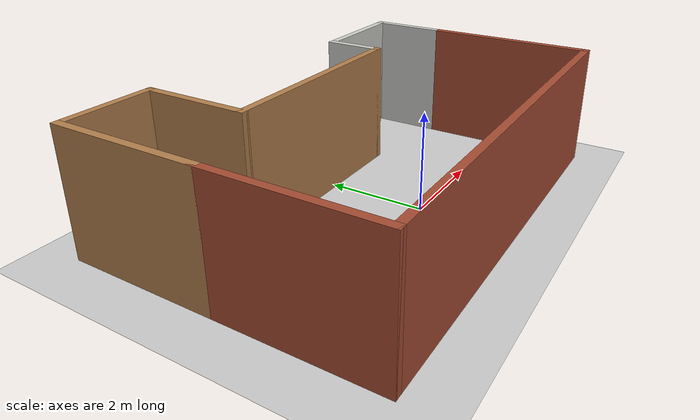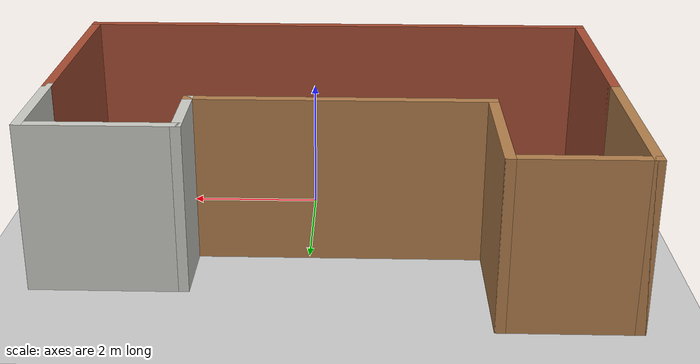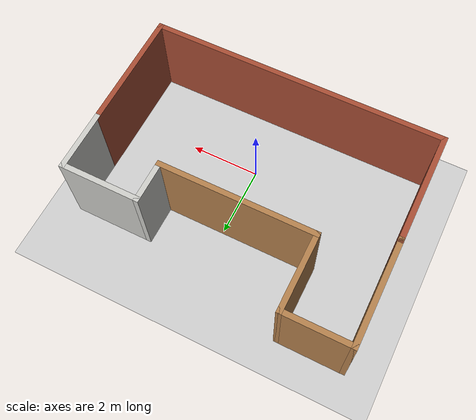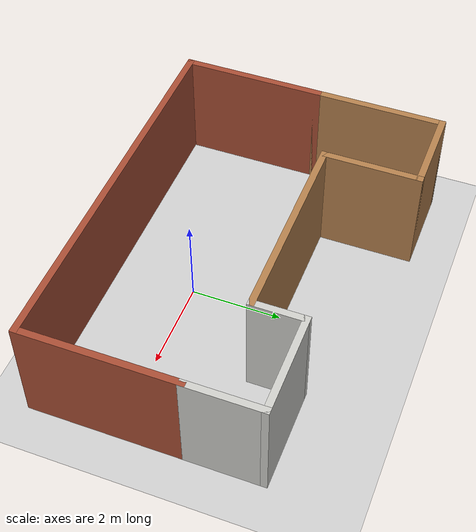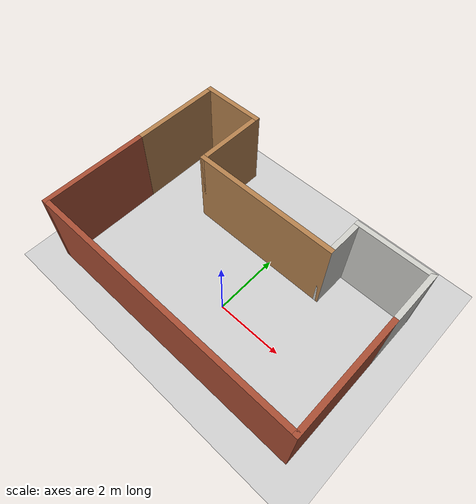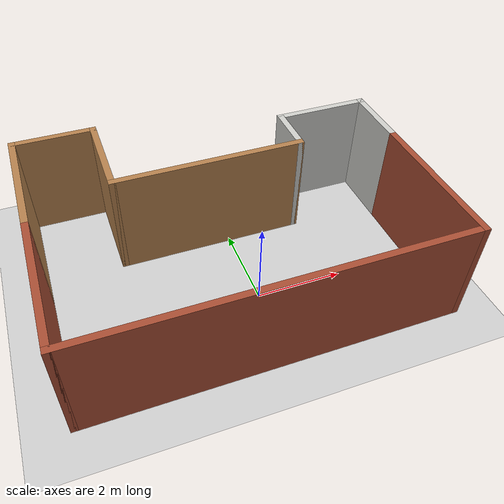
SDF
<sdf version="1.6">
 <world name="default">
  <light name="sun" type="directional">
   <pose>0 0 10 0 -0 0</pose>
   <diffuse>0.8 0.8 0.8 1</diffuse>
   <specular>0.2 0.2 0.2 1</specular>
   <attenuation>
    <range>1000</range>
    <constant>0.9</constant>
    <linear>0.01</linear>
    <quadratic>0.001</quadratic>
   </attenuation>
   <direction>-0.5 0.1 -0.9</direction>
  </light>
  <model name="ground_plane">
   <static>1</static>
   <link name="link">
    <collision name="collision">
     <geometry><plane><normal>0 0 1</normal><size>100 100</size></plane></geometry>
     <surface>
      <contact><collide_bitmask>65535</collide_bitmask></contact>
      <friction><ode><mu>100</mu><mu2>50</mu2></ode></friction>
     </surface>
    </collision>
    <visual name="visual">
     <cast_shadows>0</cast_shadows>
     <geometry><plane><normal>0 0 1</normal><size>100 100</size></plane></geometry>
     <material>
      <script><uri>file://media/materials/scripts/gazebo.material</uri><name>Gazebo/Grey</name></script>
     </material>
    </visual>
   </link>
  </model>
  <gravity>0 0 -9.8</gravity>
  <magnetic_field>6e-06 2.3e-05 -4.2e-05</magnetic_field>
  <atmosphere type="adiabatic"/>
  <physics name="default_physics" default="0" type="ode">
   <max_step_size>0.001</max_step_size>
   <real_time_factor>1</real_time_factor>
   <real_time_update_rate>1000</real_time_update_rate>
  </physics>
  <scene><ambient>0.4 0.4 0.4 1</ambient><background>0.7 0.7 0.7 1</background><shadows>1</shadows></scene>
  <spherical_coordinates>
   <surface_model>EARTH_WGS84</surface_model>
   <latitude_deg>0</latitude_deg>
   <longitude_deg>0</longitude_deg>
   <elevation>0</elevation>
   <heading_deg>0</heading_deg>
  </spherical_coordinates>
  <model name="Untitled">
   <pose>-0.295804 1.13226 0 0 -0 0</pose>
   <link name="Wall_28">
    <collision name="Wall_28_Collision">
     <geometry><box><size>3.25 0.15 2.5</size></box></geometry>
     <pose>0 0 1.25 0 -0 0</pose>
    </collision>
    <visual name="Wall_28_Visual">
     <pose>0 0 1.25 0 -0 0</pose>
     <geometry><box><size>3.25 0.15 2.5</size></box></geometry>
     <material>
      <script><uri>file://media/materials/scripts/gazebo.material</uri><name>Gazebo/Bricks</name></script>
      <ambient>1 1 1 1</ambient>
     </material>
     <meta><layer>0</layer></meta>
    </visual>
    <pose>-4.175 -1.425 0 0 0 -1.5708</pose>
   </link>
   <link name="Wall_29">
    <collision name="Wall_29_Collision">
     <geometry><box><size>8.5 0.15 2.5</size></box></geometry>
     <pose>0 0 1.25 0 -0 0</pose>
    </collision>
    <visual name="Wall_29_Visual">
     <pose>0 0 1.25 0 -0 0</pose>
     <geometry><box><size>8.5 0.15 2.5</size></box></geometry>
     <material>
      <script><uri>file://media/materials/scripts/gazebo.material</uri><name>Gazebo/Bricks</name></script>
      <ambient>1 1 1 1</ambient>
     </material>
     <meta><layer>0</layer></meta>
    </visual>
    <pose>0 -2.975 0 0 -0 0</pose>
   </link>
   <link name="Wall_30">
    <collision name="Wall_30_Collision">
     <geometry><box><size>3.5 0.15 2.5</size></box></geometry>
     <pose>0 0 1.25 0 -0 0</pose>
    </collision>
    <visual name="Wall_30_Visual">
     <pose>0 0 1.25 0 -0 0</pose>
     <geometry><box><size>3.5 0.15 2.5</size></box></geometry>
     <material>
      <script><uri>file://media/materials/scripts/gazebo.material</uri><name>Gazebo/Bricks</name></script>
      <ambient>1 1 1 1</ambient>
     </material>
     <meta><layer>0</layer></meta>
    </visual>
    <pose>4.175 -1.3 0 0 -0 1.5708</pose>
   </link>
   <link name="Wall_32">
    <collision name="Wall_32_Collision">
     <geometry><box><size>3 0.15 2.5</size></box></geometry>
     <pose>0 0 1.25 0 -0 0</pose>
    </collision>
    <visual name="Wall_32_Visual">
     <pose>0 0 1.25 0 -0 0</pose>
     <geometry><box><size>3 0.15 2.5</size></box></geometry>
     <material>
      <script><uri>file://media/materials/scripts/gazebo.material</uri><name>Gazebo/Wood</name></script>
      <ambient>1 1 1 1</ambient>
     </material>
     <meta><layer>0</layer></meta>
    </visual>
    <pose>-4.175 1.55 0 0 -0 1.5708</pose>
   </link>
   <link name="Wall_33">
    <collision name="Wall_33_Collision">
     <geometry><box><size>2 0.15 2.5</size></box></geometry>
     <pose>0 0 1.25 0 -0 0</pose>
    </collision>
    <visual name="Wall_33_Visual">
     <pose>0 0 1.25 0 -0 0</pose>
     <geometry><box><size>2 0.15 2.5</size></box></geometry>
     <material>
      <script><uri>file://media/materials/scripts/gazebo.material</uri><name>Gazebo/Wood</name></script>
      <ambient>1 1 1 1</ambient>
     </material>
     <meta><layer>0</layer></meta>
    </visual>
    <pose>-3.25 2.975 0 0 -0 0</pose>
   </link>
   <link name="Wall_34">
    <collision name="Wall_34_Collision">
     <geometry><box><size>2.25 0.15 2.5</size></box></geometry>
     <pose>0 0 1.25 0 -0 0</pose>
    </collision>
    <visual name="Wall_34_Visual">
     <pose>0 0 1.25 0 -0 0</pose>
     <geometry><box><size>2.25 0.15 2.5</size></box></geometry>
     <material>
      <script><uri>file://media/materials/scripts/gazebo.material</uri><name>Gazebo/Wood</name></script>
      <ambient>1 1 1 1</ambient>
     </material>
     <meta><layer>0</layer></meta>
    </visual>
    <pose>-2.325 1.925 0 0 0 -1.5708</pose>
   </link>
   <link name="Wall_35">
    <collision name="Wall_35_Collision">
     <geometry><box><size>4.5 0.15 2.5</size></box></geometry>
     <pose>0 0 1.25 0 -0 0</pose>
    </collision>
    <visual name="Wall_35_Visual">
     <pose>0 0 1.25 0 -0 0</pose>
     <geometry><box><size>4.5 0.15 2.5</size></box></geometry>
     <material>
      <script><uri>file://media/materials/scripts/gazebo.material</uri><name>Gazebo/Wood</name></script>
      <ambient>1 1 1 1</ambient>
     </material>
     <meta><layer>0</layer></meta>
    </visual>
    <pose>-0.15 0.875 0 0 -0 0</pose>
   </link>
   <link name="Wall_36">
    <collision name="Wall_36_Collision">
     <geometry><box><size>1.25 0.15 2.5</size></box></geometry>
     <pose>0 0 1.25 0 -0 0</pose>
    </collision>
    <visual name="Wall_36_Visual">
     <pose>0 0 1.25 0 -0 0</pose>
     <geometry><box><size>1.25 0.15 2.5</size></box></geometry>
     <material>
      <script><uri>file://media/materials/scripts/gazebo.material</uri><name>Gazebo/CeilingTiled</name></script>
      <ambient>1 1 1 1</ambient>
     </material>
     <meta><layer>0</layer></meta>
    </visual>
    <pose>2.025 1.425 0 0 -0 1.5708</pose>
   </link>
   <link name="Wall_40">
    <collision name="Wall_40_Collision">
     <geometry><box><size>1.75 0.15 2.5</size></box></geometry>
     <pose>0 0 1.25 0 -0 0</pose>
    </collision>
    <visual name="Wall_40_Visual">
     <pose>0 0 1.25 0 -0 0</pose>
     <geometry><box><size>1.75 0.15 2.5</size></box></geometry>
     <material>
      <script><uri>file://media/materials/scripts/gazebo.material</uri><name>Gazebo/CeilingTiled</name></script>
      <ambient>1 1 1 1</ambient>
     </material>
     <meta><layer>0</layer></meta>
    </visual>
    <pose>4.175 1.175 0 0 -0 1.5708</pose>
   </link>
   <link name="Wall_41">
    <collision name="Wall_41_Collision">
     <geometry><box><size>2.3 0.15 2.5</size></box></geometry>
     <pose>0 0 1.25 0 -0 0</pose>
    </collision>
    <visual name="Wall_41_Visual">
     <pose>0 0 1.25 0 -0 0</pose>
     <geometry><box><size>2.3 0.15 2.5</size></box></geometry>
     <material>
      <script><uri>file://media/materials/scripts/gazebo.material</uri><name>Gazebo/CeilingTiled</name></script>
      <ambient>1 1 1 1</ambient>
     </material>
     <meta><layer>0</layer></meta>
    </visual>
    <pose>3.1 1.975 0 0 0 -3.14159</pose>
   </link>
   <static>1</static>
  </model>
 </world>
</sdf>
